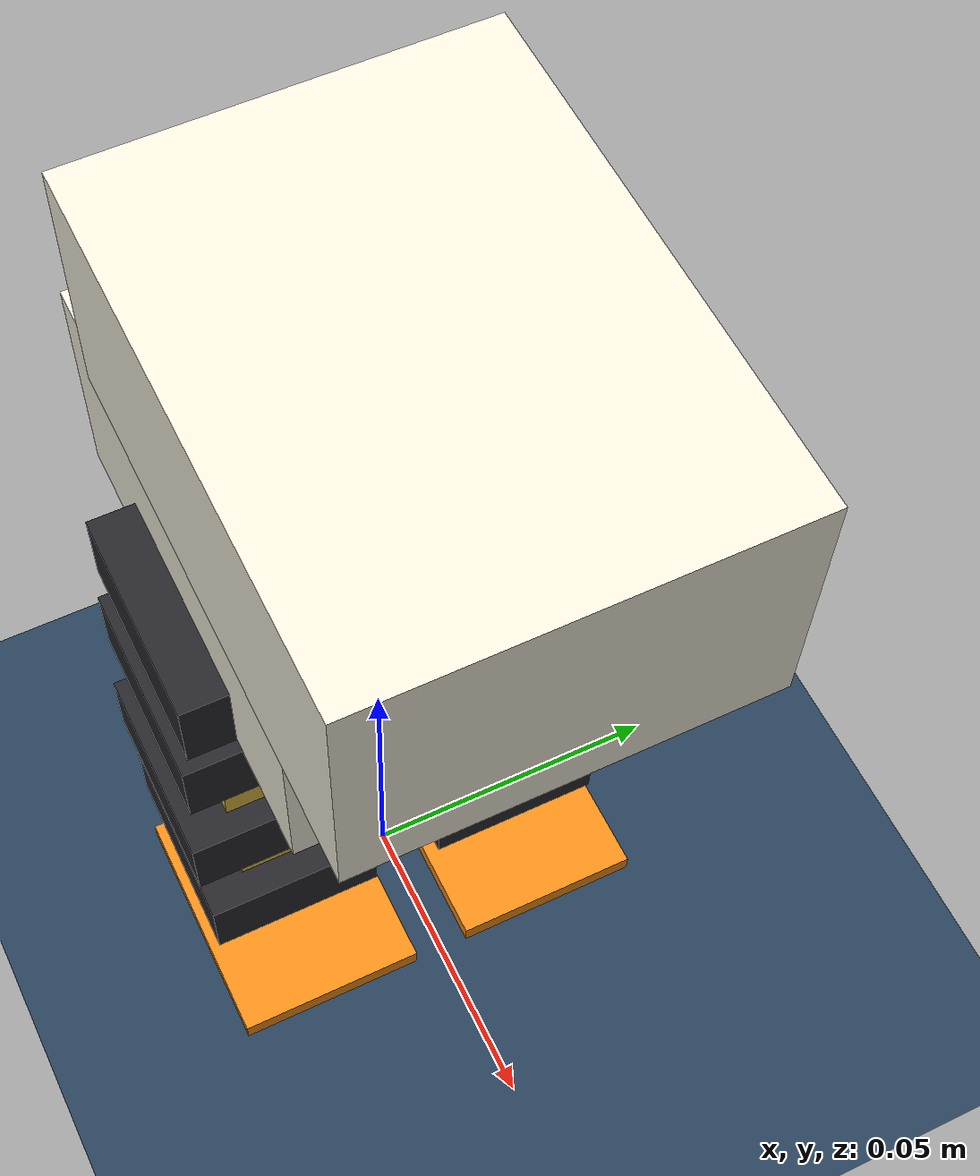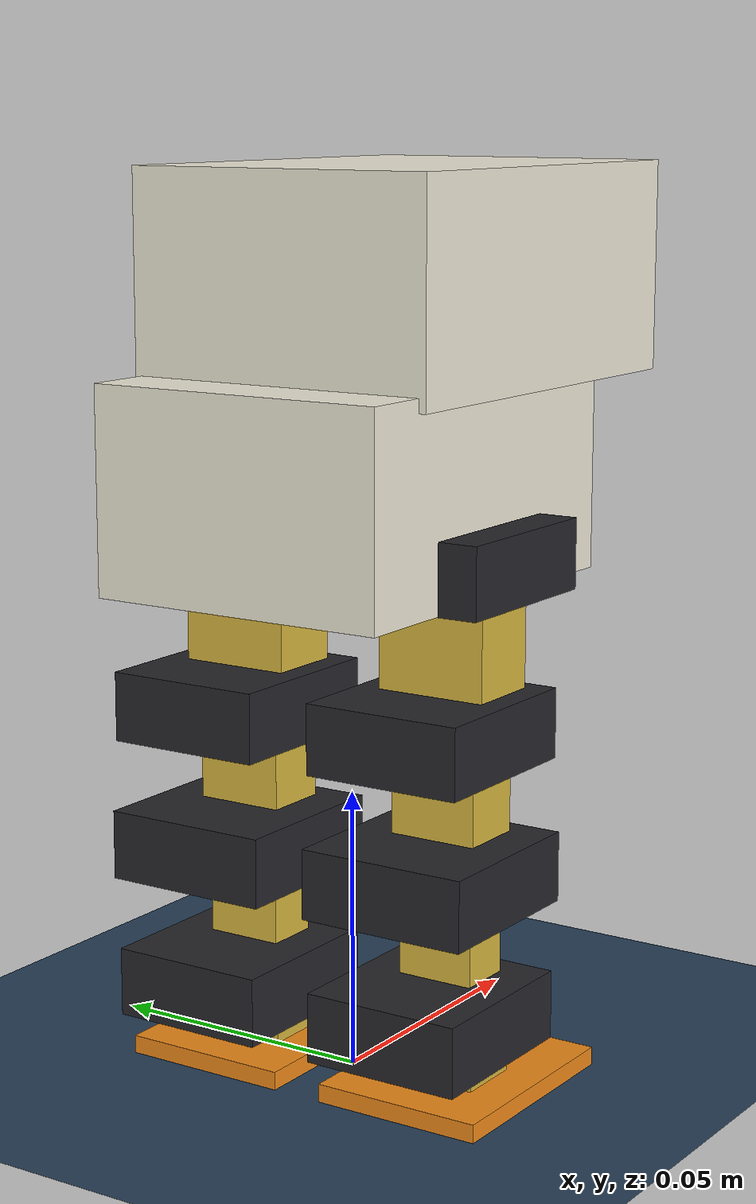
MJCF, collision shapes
<mujoco model="nanoduck_scene">
  <include file="nanoduck.xml"/>

  <visual>
    <headlight diffuse="0.6 0.6 0.6" ambient="0.3 0.3 0.3" specular="0 0 0"/>
    <rgba haze="0.15 0.25 0.35 1"/>
    <!-- offwidth/offheight size the offscreen framebuffer; the 640x480
         default is too small for a readable render of a tall biped. -->
    <global azimuth="160" elevation="-20" offwidth="1280" offheight="960"/>
  </visual>

  <asset>
    <texture type="skybox" builtin="gradient" rgb1="0.3 0.5 0.7" rgb2="0 0 0"
             width="512" height="3072"/>
    <texture type="2d" name="groundplane" builtin="checker" mark="edge"
             rgb1="0.2 0.3 0.4" rgb2="0.1 0.2 0.3" markrgb="0.8 0.8 0.8"
             width="300" height="300"/>
    <material name="groundplane" texture="groundplane" texuniform="true"
              texrepeat="5 5" reflectance="0.2"/>
  </asset>

  <worldbody>
    <light pos="0 0 3.5" dir="0 0 -1" directional="true"/>
    <geom name="floor" size="0 0 0.05" pos="0 0 0" type="plane" material="groundplane"/>
  </worldbody>

  <keyframe>
    <key name="STAND" qpos="0 0 0.1048 1 0 0 0 -0.000000 0.200000 -0.400000 0.200000 0.150000 0.000000 0.000000 0.200000 -0.400000 0.200000" ctrl="-0.000000 0.200000 -0.400000 0.200000 0.150000 0.000000 0.000000 0.200000 -0.400000 0.200000"/>
  </keyframe>
</mujoco>

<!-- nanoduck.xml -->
<mujoco model="nanoduck">
  <compiler angle="radian" autolimits="true" meshdir="../cad/microduck_src"/>
  <option timestep="0.005" iterations="10" ls_iterations="10"/>

  <default>
    <!-- Only the soles collide, as in MicroDuck robot_walk.xml: falling is
         cheap during velocity training and the contacts cost solver time. -->
    <default class="viz">
      <geom contype="0" conaffinity="0" group="3"/>
    </default>
    <!-- The cosmetic shells: MicroDuck's own geometry, visual only.
         Group 2, so a renderer can show the skin and hide the boxes. -->
    <default class="skin">
      <geom type="mesh" mass="0" contype="0" conaffinity="0" group="2" rgba="0.96 0.94 0.88 1"/>
    </default>
    <default class="collision">
      <geom contype="1" conaffinity="1" group="3" condim="3" friction="1.0 0.005 0.0001"/>
    </default>
    <joint damping="0.005" frictionloss="0.012" armature="0.003"/>
  </default>

  <asset>
    <mesh name="bottom_head_shell" file="bottom_head_shell.stl" scale="0.6200 0.6200 0.6200"/>
    <mesh name="top_head_shell" file="top_head_shell.stl" scale="0.6200 0.6200 0.6200"/>
    <mesh name="face_part" file="face_part.stl" scale="0.6200 0.6200 0.6200"/>
    <mesh name="jaw" file="jaw.stl" scale="0.6200 0.6200 0.6200"/>
    <mesh name="noenoeil" file="noenoeil.stl" scale="0.6200 0.6200 0.6200"/>
    <mesh name="left_shell" file="left_shell.stl" scale="0.8500 0.8500 0.8500"/>
    <mesh name="right_shell" file="right_shell.stl" scale="0.8500 0.8500 0.8500"/>
    <mesh name="sole_left" file="sole_left.stl" scale="0.7500 0.7500 0.7500"/>
    <mesh name="sole_right" file="sole_right.stl" scale="0.7500 0.7500 0.7500"/>
    <mesh name="hip_yoke_L" file="../print/hip_yoke_L.stl" scale="0.001 0.001 0.001"/>
    <mesh name="hip_yoke_R" file="../print/hip_yoke_R.stl" scale="0.001 0.001 0.001"/>
    <mesh name="thigh_L" file="../print/thigh_L.stl" scale="0.001 0.001 0.001"/>
    <mesh name="thigh_R" file="../print/thigh_R.stl" scale="0.001 0.001 0.001"/>
    <mesh name="shin_L" file="../print/shin_L.stl" scale="0.001 0.001 0.001"/>
    <mesh name="shin_R" file="../print/shin_R.stl" scale="0.001 0.001 0.001"/>
    <mesh name="foot_mount_L" file="../print/foot_mount_L.stl" scale="0.001 0.001 0.001"/>
    <mesh name="foot_mount_R" file="../print/foot_mount_R.stl" scale="0.001 0.001 0.001"/>
    <mesh name="neck_link" file="../print/neck_link.stl" scale="0.001 0.001 0.001"/>
  </asset>

  <worldbody>
    <body name="trunk_base" pos="0 0 0.1048">
      <freejoint name="root"/>
      <site name="imu" group="3" pos="0 0 0"/>
        <geom name="trunk_shell" type="box" size="0.03440 0.02720 0.01775" pos="0.00000 0.00000 0.00000" mass="0.03590" class="viz" rgba="0.95 0.93 0.86 1"/>
      <geom name="battery" type="box" size="0.02250 0.01000 0.00550" pos="0.00000 0.00000 -0.00800" mass="0.02800" class="viz" rgba="0.2 0.3 0.6 1"/>
      <geom name="pcb" type="box" size="0.02000 0.01500 0.00250" pos="0.00000 0.00000 0.00600" mass="0.01200" class="viz" rgba="0.1 0.4 0.2 1"/>
        <geom name="skin_left_shell" type="mesh" mesh="left_shell" class="skin" pos="0.00846 0.00021 -0.03291" quat="0.707107 0.000000 0.000000 0.707107"/>
        <geom name="skin_right_shell" type="mesh" mesh="right_shell" class="skin" pos="0.00846 -0.00021 -0.03285" quat="0.707107 0.000000 0.000000 0.707107"/>
        <geom name="left_hip_roll_servo" type="box" size="0.01610 0.01425 0.00610" pos="0.00000 0.02000 -0.01175" mass="0.01340" class="viz" rgba="0.15 0.15 0.17 1"/>
        <geom name="right_hip_roll_servo" type="box" size="0.01610 0.01425 0.00610" pos="0.00000 -0.02000 -0.01175" mass="0.01340" class="viz" rgba="0.15 0.15 0.17 1"/>
        <geom name="neck_pitch_servo" type="box" size="0.01000 0.01000 0.00420" pos="0.01600 0.00000 0.01275" mass="0.00370" class="viz" rgba="0.15 0.15 0.17 1"/>

      <body name="left_hip" pos="0.00000 0.02000 -0.01775">
        <joint name="left_hip_roll" axis="1 0 0" range="-0.384 0.384"/>
        <geom name="skin_hip_yoke_L" type="mesh" mesh="hip_yoke_L" class="skin" rgba="0.22 0.22 0.24 1"/>
        <geom name="left_hip_pitch_servo" type="box" size="0.01610 0.01425 0.00610" pos="-0.00600 0.00000 -0.02200" mass="0.01340" class="viz" rgba="0.15 0.15 0.17 1"/>
        <geom name="left_hip_bracket" type="box" size="0.00700 0.01000 0.01100" pos="0.00000 0.00000 -0.01100" mass="0.00289" class="viz" rgba="0.85 0.72 0.25 1"/>
        <body name="left_thigh" pos="0.00000 0.00000 -0.02200">
          <joint name="left_hip_pitch" axis="0 1 0" range="-1.571 1.571"/>
        <geom name="skin_thigh_L" type="mesh" mesh="thigh_L" class="skin" rgba="0.22 0.22 0.24 1"/>
        <geom name="left_knee_servo" type="box" size="0.01610 0.01525 0.00610" pos="-0.00600 0.00000 -0.02500" mass="0.01380" class="viz" rgba="0.15 0.15 0.17 1"/>
        <geom name="left_thigh_link" type="box" size="0.00600 0.00800 0.01250" pos="0.00000 0.00000 -0.01250" mass="0.00314" class="viz" rgba="0.85 0.72 0.25 1"/>
          <body name="left_shin" pos="0.00000 0.00000 -0.02500">
            <joint name="left_knee" axis="0 1 0" range="-1.571 1.571"/>
        <geom name="skin_shin_L" type="mesh" mesh="shin_L" class="skin" rgba="0.22 0.22 0.24 1"/>
        <geom name="left_ankle_servo" type="box" size="0.01610 0.01425 0.00610" pos="-0.00600 0.00000 -0.02500" mass="0.01340" class="viz" rgba="0.15 0.15 0.17 1"/>
        <geom name="left_shin_link" type="box" size="0.00500 0.00700 0.01250" pos="0.00000 0.00000 -0.01250" mass="0.00297" class="viz" rgba="0.85 0.72 0.25 1"/>
            <body name="left_foot" pos="0.00000 0.00000 -0.02500">
              <joint name="left_ankle" axis="0 1 0" range="-1.571 1.571"/>
        <geom name="skin_foot_mount_L" type="mesh" mesh="foot_mount_L" class="skin" rgba="0.22 0.22 0.24 1"/>
        <geom name="left_ankle_bracket" type="box" size="0.00600 0.00800 0.00600" pos="0.00000 0.00000 -0.00600" mass="0.00137" class="viz" rgba="0.85 0.72 0.25 1"/>
              <geom name="left_sole" type="box" size="0.02025 0.01540 0.00200" pos="0.00300 0.00000 -0.01400" mass="0.00301" class="collision" rgba="0.95 0.55 0.10 1"/>
        <geom name="skin_sole_left" type="mesh" mesh="sole_left" class="skin" pos="-0.00825 0.03750 0.00460" quat="0.707107 0.000000 0.000000 -0.707107"/>
              <site name="left_foot" group="3" pos="0.00300 0.00000 -0.01600"/>
            </body>
          </body>
        </body>
      </body>
      <body name="neck" pos="0.01600 0.00000 0.00975">
        <joint name="neck_pitch" axis="0 1 0" range="-1.571 1.047"/>
        <geom name="skin_neck_link" type="mesh" mesh="neck_link" class="skin" rgba="0.22 0.22 0.24 1"/>
        <geom name="head_yaw_servo" type="box" size="0.01000 0.01000 0.00420" pos="0.00000 0.00000 0.02000" mass="0.00370" class="viz" rgba="0.15 0.15 0.17 1"/>
        <geom name="neck_link" type="box" size="0.00500 0.00600 0.01000" pos="0.00000 0.00000 0.01000" mass="0.00167" class="viz" rgba="0.85 0.72 0.25 1"/>
        <body name="head" pos="0.00000 0.00000 0.02000">
          <joint name="head_yaw" axis="0 0 1" range="-2.967 2.967"/>
        <geom name="head_shell" type="box" size="0.03805 0.02845 0.01840" pos="0.00000 0.00000 0.00400" mass="0.02108" class="viz" rgba="0.95 0.93 0.86 1"/>
        <geom name="skin_bottom_head_shell" type="mesh" mesh="bottom_head_shell" class="skin" pos="-0.00300 0.00000 0.01423" quat="0.000000 0.707107 -0.707107 -0.000000"/>
        <geom name="skin_top_head_shell" type="mesh" mesh="top_head_shell" class="skin" pos="-0.00300 0.00000 0.01435" quat="0.000000 0.707107 -0.707107 -0.000000"/>
        <geom name="skin_face_part" type="mesh" mesh="face_part" class="skin" pos="-0.00313 0.00006 0.01435" quat="0.000000 0.707107 -0.707107 -0.000000"/>
        <geom name="skin_jaw" type="mesh" mesh="jaw" class="skin" pos="-0.00300 0.00000 0.01435" quat="0.000000 0.707107 -0.707107 -0.000000"/>
        <geom name="skin_noenoeil" type="mesh" mesh="noenoeil" class="skin" pos="-0.00313 0.00006 0.01435" quat="0.000000 0.707107 -0.707107 -0.000000"/>
          <site name="head_camera" group="3" pos="0.01600 0.00000 0.00800"/>
          <site name="mouth_tip" group="3" pos="0.03000 0.00000 -0.00100"/>
        </body>
      </body>
      <body name="right_hip" pos="0.00000 -0.02000 -0.01775">
        <joint name="right_hip_roll" axis="1 0 0" range="-0.384 0.384"/>
        <geom name="skin_hip_yoke_R" type="mesh" mesh="hip_yoke_R" class="skin" rgba="0.22 0.22 0.24 1"/>
        <geom name="right_hip_pitch_servo" type="box" size="0.01610 0.01425 0.00610" pos="-0.00600 0.00000 -0.02200" mass="0.01340" class="viz" rgba="0.15 0.15 0.17 1"/>
        <geom name="right_hip_bracket" type="box" size="0.00700 0.01000 0.01100" pos="0.00000 0.00000 -0.01100" mass="0.00289" class="viz" rgba="0.85 0.72 0.25 1"/>
        <body name="right_thigh" pos="0.00000 0.00000 -0.02200">
          <joint name="right_hip_pitch" axis="0 1 0" range="-1.571 1.571"/>
        <geom name="skin_thigh_R" type="mesh" mesh="thigh_R" class="skin" rgba="0.22 0.22 0.24 1"/>
        <geom name="right_knee_servo" type="box" size="0.01610 0.01525 0.00610" pos="-0.00600 0.00000 -0.02500" mass="0.01380" class="viz" rgba="0.15 0.15 0.17 1"/>
        <geom name="right_thigh_link" type="box" size="0.00600 0.00800 0.01250" pos="0.00000 0.00000 -0.01250" mass="0.00314" class="viz" rgba="0.85 0.72 0.25 1"/>
          <body name="right_shin" pos="0.00000 0.00000 -0.02500">
            <joint name="right_knee" axis="0 1 0" range="-1.571 1.571"/>
        <geom name="skin_shin_R" type="mesh" mesh="shin_R" class="skin" rgba="0.22 0.22 0.24 1"/>
        <geom name="right_ankle_servo" type="box" size="0.01610 0.01425 0.00610" pos="-0.00600 0.00000 -0.02500" mass="0.01340" class="viz" rgba="0.15 0.15 0.17 1"/>
        <geom name="right_shin_link" type="box" size="0.00500 0.00700 0.01250" pos="0.00000 0.00000 -0.01250" mass="0.00297" class="viz" rgba="0.85 0.72 0.25 1"/>
            <body name="right_foot" pos="0.00000 0.00000 -0.02500">
              <joint name="right_ankle" axis="0 1 0" range="-1.571 1.571"/>
        <geom name="skin_foot_mount_R" type="mesh" mesh="foot_mount_R" class="skin" rgba="0.22 0.22 0.24 1"/>
        <geom name="right_ankle_bracket" type="box" size="0.00600 0.00800 0.00600" pos="0.00000 0.00000 -0.00600" mass="0.00137" class="viz" rgba="0.85 0.72 0.25 1"/>
              <geom name="right_sole" type="box" size="0.02025 0.01540 0.00200" pos="0.00300 0.00000 -0.01400" mass="0.00301" class="collision" rgba="0.95 0.55 0.10 1"/>
        <geom name="skin_sole_right" type="mesh" mesh="sole_right" class="skin" pos="0.01425 0.03750 0.00460" quat="0.707107 0.000000 0.000000 0.707107"/>
              <site name="right_foot" group="3" pos="0.00300 0.00000 -0.01600"/>
            </body>
          </body>
        </body>
      </body>
    </body>
  </worldbody>

  <actuator>
    <position name="left_hip_roll" joint="left_hip_roll" kp="2.480" kv="0" forcerange="-0.216 0.216" ctrlrange="-0.384 0.384"/>
    <position name="left_hip_pitch" joint="left_hip_pitch" kp="2.480" kv="0" forcerange="-0.216 0.216" ctrlrange="-0.567 1.745"/>
    <position name="left_knee" joint="left_knee" kp="3.550" kv="0" forcerange="-0.310 0.310" ctrlrange="-1.789 0.567"/>
    <position name="left_ankle" joint="left_ankle" kp="2.480" kv="0" forcerange="-0.216 0.216" ctrlrange="-0.175 0.393"/>
    <position name="neck_pitch" joint="neck_pitch" kp="0.690" kv="0" forcerange="-0.060 0.060" ctrlrange="-1.571 1.047"/>
    <position name="head_yaw" joint="head_yaw" kp="0.690" kv="0" forcerange="-0.060 0.060" ctrlrange="-2.967 2.967"/>
    <position name="right_hip_roll" joint="right_hip_roll" kp="2.480" kv="0" forcerange="-0.216 0.216" ctrlrange="-0.384 0.384"/>
    <position name="right_hip_pitch" joint="right_hip_pitch" kp="2.480" kv="0" forcerange="-0.216 0.216" ctrlrange="-0.567 1.745"/>
    <position name="right_knee" joint="right_knee" kp="3.550" kv="0" forcerange="-0.310 0.310" ctrlrange="-1.789 0.567"/>
    <position name="right_ankle" joint="right_ankle" kp="2.480" kv="0" forcerange="-0.216 0.216" ctrlrange="-0.175 0.393"/>
  </actuator>

  <sensor>
    <gyro name="imu_ang_vel" site="imu"/>
    <accelerometer name="imu_accel" site="imu"/>
    <velocimeter name="imu_lin_vel" site="imu"/>
    <framequat name="orientation" objtype="site" objname="imu"/>
  </sensor>
</mujoco>
